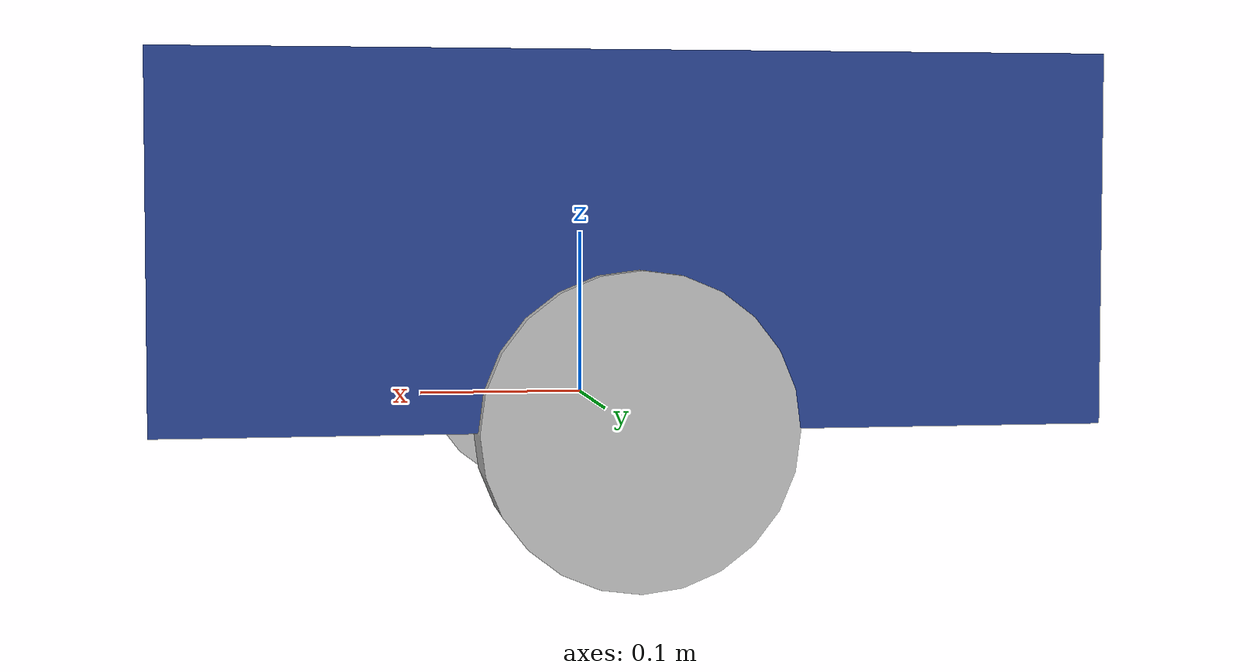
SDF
<?xml version="1.0"?>
<sdf version="1.6">
  <model name="barn_robot">
    <pose>0 0 0 0 0 0</pose>
    <allow_auto_disable>false</allow_auto_disable>

    <link name="base_footprint"/>
    <link name="base_link">
      <inertial>
        <mass>17.0</mass>
        <inertia>
          <ixx>0.34</ixx><iyy>0.42</iyy><izz>0.62</izz>
          <ixy>0</ixy><ixz>0</ixz><iyz>0</iyz>
        </inertia>
      </inertial>
      <collision name="base_collision">
        <pose>0 0 0.10 0 0 0</pose>
        <geometry><box><size>0.508 0.430 0.20</size></box></geometry>
        <surface>
          <contact><ode><min_depth>0.001</min_depth></ode></contact>
          <friction><ode><mu>1.0</mu><mu2>1.0</mu2></ode></friction>
        </surface>
      </collision>
      <visual name="base_visual">
        <pose>0 0 0.10 0 0 0</pose>
        <geometry><box><size>0.508 0.430 0.20</size></box></geometry>
        <material><ambient>0.15 0.25 0.55 1</ambient></material>
      </visual>
      <sensor type="contact" name="base_bumper">
        <always_on>true</always_on>
        <update_rate>100</update_rate>
        <contact><collision>base_collision</collision></contact>
        <plugin name="barn_bumper" filename="libgazebo_ros_bumper.so">
          <ros><remapping>bumper_states:=bumper_states</remapping></ros>
          <frame_name>base_link</frame_name>
        </plugin>
      </sensor>
    </link>

    <link name="left_wheel">
      <inertial>
        <mass>0.8</mass>
        <inertia>
          <ixx>0.003</ixx><iyy>0.003</iyy><izz>0.005</izz>
          <ixy>0</ixy><ixz>0</ixz><iyz>0</iyz>
        </inertia>
      </inertial>
      <collision name="left_wheel_collision">
        <pose>0 0.205 0 1.57079632679 0 0</pose>
        <geometry><cylinder><radius>0.085</radius><length>0.04</length></cylinder></geometry>
        <surface>
          <friction><ode><mu>100</mu><mu2>100</mu2><fdir1>1 0 0</fdir1></ode></friction>
        </surface>
      </collision>
      <visual name="left_wheel_visual">
        <pose>0 0.205 0 1.57079632679 0 0</pose>
        <geometry><cylinder><radius>0.085</radius><length>0.04</length></cylinder></geometry>
      </visual>
    </link>

    <link name="right_wheel">
      <inertial>
        <mass>0.8</mass>
        <inertia>
          <ixx>0.003</ixx><iyy>0.003</iyy><izz>0.005</izz>
          <ixy>0</ixy><ixz>0</ixz><iyz>0</iyz>
        </inertia>
      </inertial>
      <collision name="right_wheel_collision">
        <pose>0 -0.205 0 1.57079632679 0 0</pose>
        <geometry><cylinder><radius>0.085</radius><length>0.04</length></cylinder></geometry>
        <surface>
          <friction><ode><mu>100</mu><mu2>100</mu2><fdir1>1 0 0</fdir1></ode></friction>
        </surface>
      </collision>
      <visual name="right_wheel_visual">
        <pose>0 -0.205 0 1.57079632679 0 0</pose>
        <geometry><cylinder><radius>0.085</radius><length>0.04</length></cylinder></geometry>
      </visual>
    </link>

    <link name="rear_caster">
      <pose>-0.19 0 -0.065 0 0 0</pose>
      <inertial>
        <mass>0.1</mass>
        <inertia>
          <ixx>0.001</ixx><iyy>0.001</iyy><izz>0.001</izz>
          <ixy>0</ixy><ixz>0</ixz><iyz>0</iyz>
        </inertia>
      </inertial>
      <collision name="rear_caster_collision">
        <geometry><sphere><radius>0.025</radius></sphere></geometry>
        <surface><friction><ode><mu>0</mu><mu2>0</mu2></ode></friction></surface>
      </collision>
    </link>

    <link name="lidar_link">
      <pose>0.12 0 0.28 0 0 0</pose>
      <inertial>
        <mass>0.1</mass>
        <inertia>
          <ixx>0.001</ixx><iyy>0.001</iyy><izz>0.001</izz>
          <ixy>0</ixy><ixz>0</ixz><iyz>0</iyz>
        </inertia>
      </inertial>
      <sensor name="cpu_lidar" type="ray">
        <always_on>true</always_on>
        <update_rate>20</update_rate>
        <visualize>false</visualize>
        <ray>
          <scan><horizontal>
            <samples>180</samples><resolution>1</resolution>
            <min_angle>-3.14159265359</min_angle><max_angle>3.14159265359</max_angle>
          </horizontal></scan>
          <range><min>0.08</min><max>6.0</max><resolution>0.01</resolution></range>
        </ray>
        <plugin name="barn_lidar" filename="libgazebo_ros_ray_sensor.so">
          <ros><remapping>~/out:=scan</remapping></ros>
          <output_type>sensor_msgs/LaserScan</output_type>
          <frame_name>lidar_link</frame_name>
        </plugin>
      </sensor>
    </link>

    <joint name="base_joint" type="fixed">
      <parent>base_footprint</parent><child>base_link</child>
    </joint>
    <joint name="left_wheel_joint" type="revolute">
      <parent>base_link</parent><child>left_wheel</child>
      <axis><xyz>0 1 0</xyz></axis>
    </joint>
    <joint name="right_wheel_joint" type="revolute">
      <parent>base_link</parent><child>right_wheel</child>
      <axis><xyz>0 1 0</xyz></axis>
    </joint>
    <joint name="rear_caster_joint" type="ball">
      <parent>base_link</parent><child>rear_caster</child>
    </joint>
    <joint name="lidar_joint" type="fixed">
      <parent>base_link</parent><child>lidar_link</child>
    </joint>

    <plugin name="barn_diff_drive" filename="libgazebo_ros_diff_drive.so">
      <update_rate>20</update_rate>
      <left_joint>left_wheel_joint</left_joint>
      <right_joint>right_wheel_joint</right_joint>
      <wheel_separation>0.410</wheel_separation>
      <wheel_diameter>0.170</wheel_diameter>
      <max_wheel_torque>80</max_wheel_torque>
      <max_wheel_acceleration>8.0</max_wheel_acceleration>
      <command_topic>cmd_vel</command_topic>
      <odometry_topic>odom</odometry_topic>
      <odometry_frame>odom</odometry_frame>
      <robot_base_frame>base_footprint</robot_base_frame>
      <publish_odom>true</publish_odom>
      <publish_odom_tf>false</publish_odom_tf>
    </plugin>
  </model>
</sdf>
